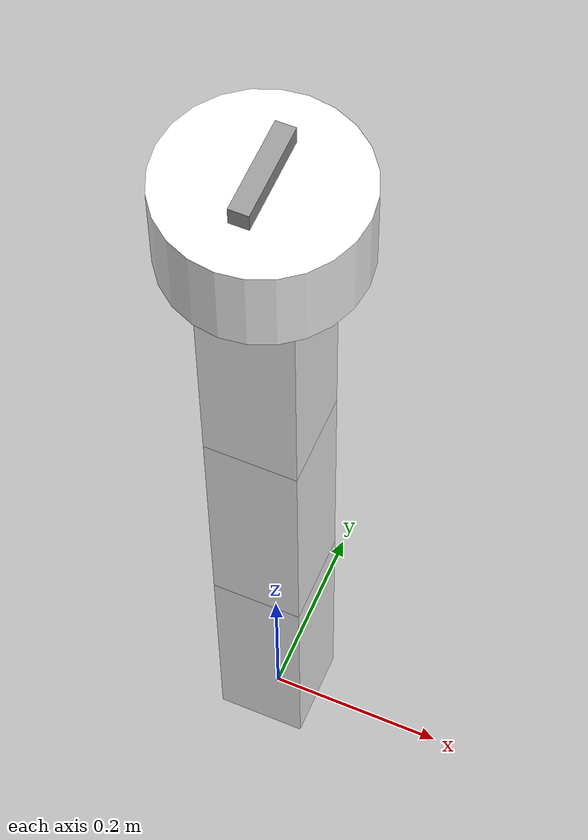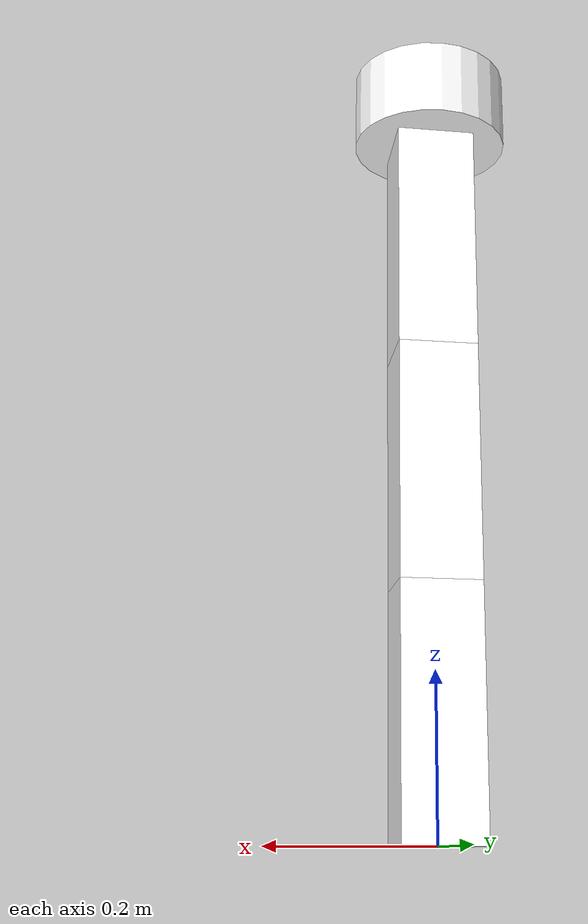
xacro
<?xml version="1.0"?>
<robot xmlns:xacro="http://www.ros.org/wiki/xacro" name="waveshare_servos">
    <xacro:arg name="prefix" default="" />

    <material name="white">
        <color rgba="1 1 1 1" />
    </material>

    <link name="base_link">
        <visual>
            <origin xyz="0 0 0.15"/>
            <geometry>
                <box size="0.1 0.1 0.3"/>
            </geometry>
            <material name="white"/>
        </visual>
    </link>

    <joint name="joint1" type="revolute">
        <axis xyz="0 0 1"/>
        <limit effort="1000.0" lower="-1.570796" upper="1.570796" velocity="0.5"/>
        <origin xyz="0 0 0.3"/>
        <parent link="base_link"/>
        <child link="link2"/>
    </joint>

    <link name="link2">
        <visual>
            <origin xyz="0 0 0.15"/>
            <geometry>
                <box size="0.1 0.1 0.3"/>
            </geometry>
            <material name="white"/>
        </visual>
    </link>

    <joint name="joint2" type="revolute">
        <axis xyz="1 0 0"/>
        <limit effort="1000.0" lower="-1.570796" upper="1.570796" velocity="0.5"/>
        <origin rpy="0 0 0" xyz="0 0 0.3"/>
        <parent link="link2"/>
        <child link="link3"/>
    </joint>

    <link name="link3">
        <visual>
            <origin xyz="0 0 0.15"/>
            <geometry>
                <box size="0.1 0.1 0.3"/>
            </geometry>
            <material name="white"/>
        </visual>
    </link>

    <joint name="joint3" type="continuous">
        <axis xyz="0 0 1"/>
        <limit effort="1000.0" lower="-3.14" upper="3.14" velocity="1.0"/>
        <origin xyz="0 0 0.3"/>
        <parent link="link3"/>
        <child link="link4"/>
    </joint>

    <link name="link4">
        <visual>
            <origin xyz="0 0 0.05"/>
            <geometry>
                <cylinder length="0.1" radius="0.1"/>
            </geometry>
            <material name="white"/>
        </visual>
    </link>

    <!-- Gripper Joint -->
    <joint name="gripper_joint" type="revolute">
        <parent link="link4"/>
        <child link="gripper_link"/>
        <origin xyz="0 0 0.06" rpy="0 0 0"/>
        <axis xyz="0 1 0"/>
        <limit lower="-0.5" upper="0.5" effort="5" velocity="1.0"/>
    </joint>

    <!-- Gripper Link -->
    <link name="gripper_link">
        <visual>
            <geometry><box size="0.02 0.1 0.02"/></geometry>
            <origin xyz="0 0 0.05" rpy="0 0 0"/>
            <material name="grey"/>
        </visual>
        <collision>
            <geometry><box size="0.02 0.1 0.02"/></geometry>
            <origin xyz="0 0 0.05" rpy="0 0 0"/>
        </collision>
    </link>

    <xacro:include filename="$(find waveshare_explorer)/description/ros2_control/example.ros2_control.xacro"/>

    <xacro:example_ws_ros2_control name="example_ws_ros2_control" prefix="$(arg prefix)"/>

</robot>
